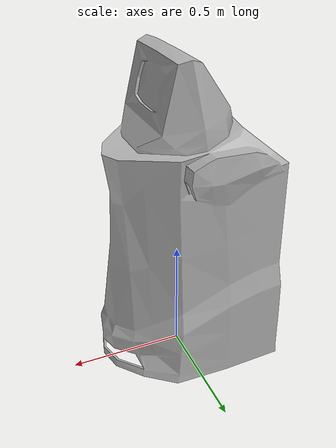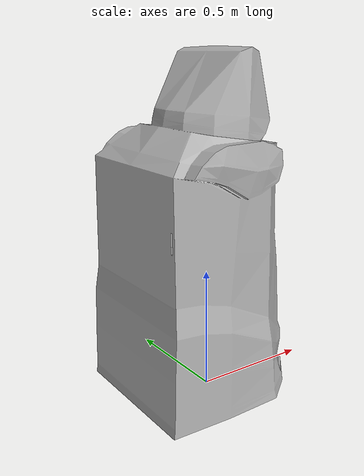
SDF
<sdf version="1.6">
  <model name="HOSPI">
    <static>false</static>
    <plugin name="slotcar" filename="libslotcar.so" />
    <link name="body">
      <pose>0 0 0 0 0 0</pose>

        <collision name="collision">
          <pose>0 0 0.7 0 0 0</pose>
          <geometry>
            <box>
              <size>0.7 0.7 1.4</size>
            </box>
          </geometry>
        </collision>

        <visual name="visual">
          <geometry>
            <mesh><uri>model://HOSPI/meshes/HOSPI.obj</uri></mesh>
          </geometry>
        </visual>
        <visual name="front_wheel_left">
        <pose>.17 -.21 .03 0 0 0</pose>
          <geometry>
            <mesh><uri>model://HOSPI/meshes/SmallWheel.obj</uri></mesh>
          </geometry>
        </visual>
        <visual name="back_wheel_left">
        <pose>-.24 -.21 .03 0 0 0</pose>
          <geometry>
            <mesh><uri>model://HOSPI/meshes/SmallWheel.obj</uri></mesh>
          </geometry>
        </visual>
        <visual name="front_wheel_right">
        <pose>.17 .21 .03 0 0 0</pose>
          <geometry>
            <mesh><uri>model://HOSPI/meshes/SmallWheel.obj</uri></mesh>
          </geometry>
        </visual>
        <visual name="back_wheel_right">
        <pose>-.24 .21 .03 0 0 0</pose>
          <geometry>
            <mesh><uri>model://HOSPI/meshes/SmallWheel.obj</uri></mesh>
          </geometry>
        </visual>
        <visual name="fat_wheel_left">
        <pose>-.03 -.21 .06 0 0 0</pose>
          <geometry>
            <mesh><uri>model://HOSPI/meshes/FatWheel.obj</uri></mesh>
          </geometry>
        </visual>
        <visual name="fat_wheel_right">
        <pose>-.03 .22 .06 0 0 0</pose>
          <geometry>
            <mesh><uri>model://HOSPI/meshes/FatWheel.obj</uri></mesh>
          </geometry>
        </visual>

    </link>
  </model>
</sdf>
